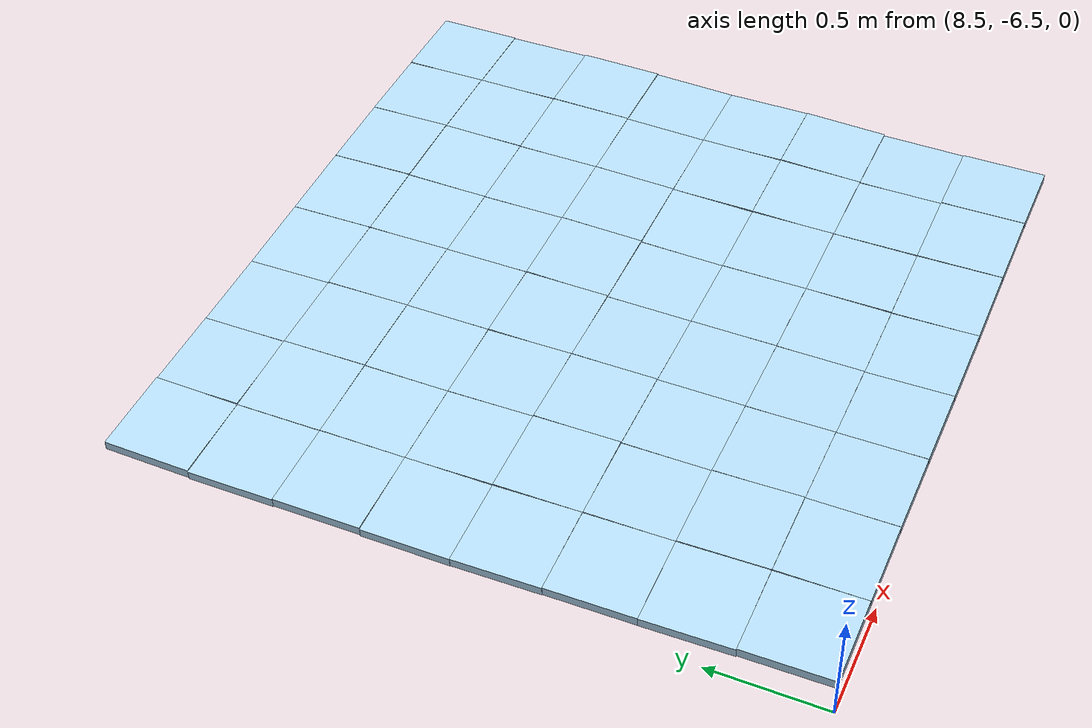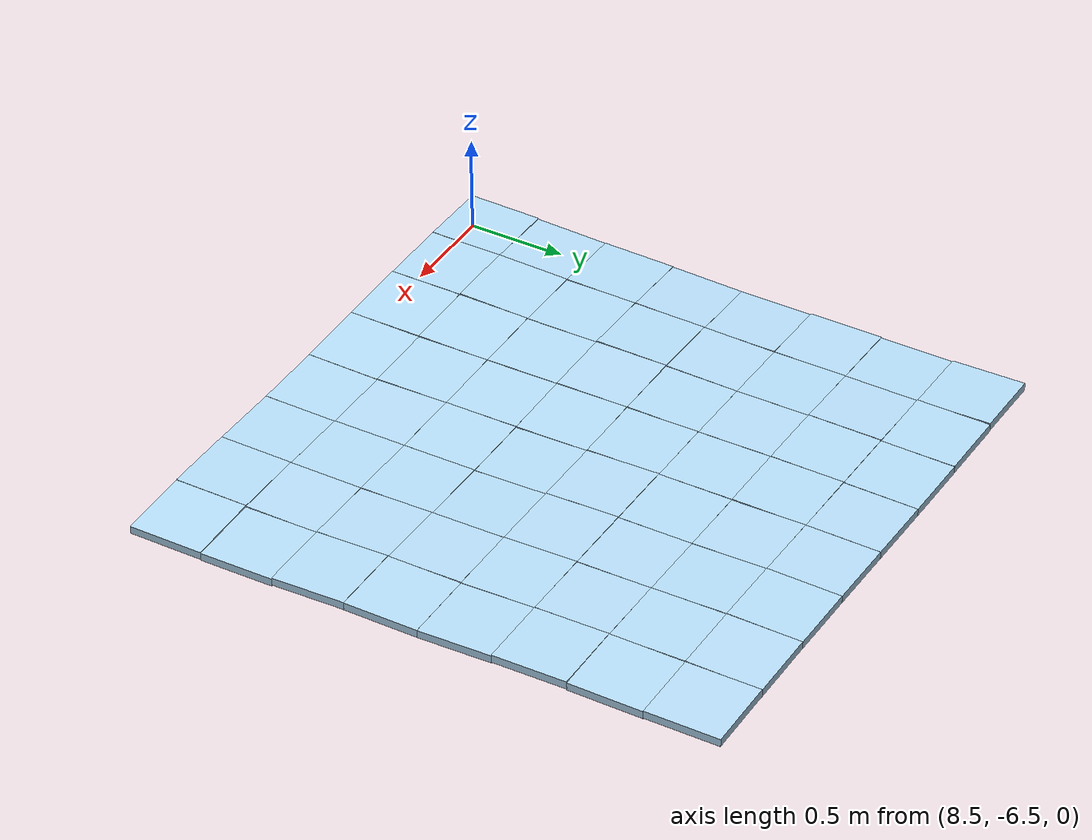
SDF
<sdf version="1.8">
 <world name="default">
  <model name="slip_patch_1">
   <static>true</static>
   <link name="t_0_0">
    <pose>8.6875 -6.3125 0.1632 -0.01806 -0.02700 0</pose>
    <collision name="collision">
     <geometry><box><size>0.3750 0.3750 0.04</size></box></geometry>
     <surface><friction><ode><mu>0.3</mu><mu2>0.3</mu2></ode></friction></surface>
    </collision>
    <visual name="visual">
     <geometry><box><size>0.3750 0.3750 0.04</size></box></geometry>
     <material>
      <ambient>0.62 0.76 0.85 1</ambient>
      <diffuse>0.70 0.85 0.95 1</diffuse>
      <specular>0.9 0.9 0.9 1</specular>
     </material>
    </visual>
   </link>
   <link name="t_0_1">
    <pose>8.6875 -5.9375 0.1518 -0.03470 -0.04861 0</pose>
    <collision name="collision">
     <geometry><box><size>0.3750 0.3750 0.04</size></box></geometry>
     <surface><friction><ode><mu>0.3</mu><mu2>0.3</mu2></ode></friction></surface>
    </collision>
    <visual name="visual">
     <geometry><box><size>0.3750 0.3750 0.04</size></box></geometry>
     <material>
      <ambient>0.62 0.76 0.85 1</ambient>
      <diffuse>0.70 0.85 0.95 1</diffuse>
      <specular>0.9 0.9 0.9 1</specular>
     </material>
    </visual>
   </link>
   <link name="t_0_2">
    <pose>8.6875 -5.5625 0.1428 -0.02063 -0.04782 0</pose>
    <collision name="collision">
     <geometry><box><size>0.3750 0.3750 0.04</size></box></geometry>
     <surface><friction><ode><mu>0.3</mu><mu2>0.3</mu2></ode></friction></surface>
    </collision>
    <visual name="visual">
     <geometry><box><size>0.3750 0.3750 0.04</size></box></geometry>
     <material>
      <ambient>0.62 0.76 0.85 1</ambient>
      <diffuse>0.70 0.85 0.95 1</diffuse>
      <specular>0.9 0.9 0.9 1</specular>
     </material>
    </visual>
   </link>
   <link name="t_0_3">
    <pose>8.6875 -5.1875 0.1330 -0.03111 -0.06247 0</pose>
    <collision name="collision">
     <geometry><box><size>0.3750 0.3750 0.04</size></box></geometry>
     <surface><friction><ode><mu>0.3</mu><mu2>0.3</mu2></ode></friction></surface>
    </collision>
    <visual name="visual">
     <geometry><box><size>0.3750 0.3750 0.04</size></box></geometry>
     <material>
      <ambient>0.62 0.76 0.85 1</ambient>
      <diffuse>0.70 0.85 0.95 1</diffuse>
      <specular>0.9 0.9 0.9 1</specular>
     </material>
    </visual>
   </link>
   <link name="t_0_4">
    <pose>8.6875 -4.8125 0.1257 -0.00396 -0.06405 0</pose>
    <collision name="collision">
     <geometry><box><size>0.3750 0.3750 0.04</size></box></geometry>
     <surface><friction><ode><mu>0.3</mu><mu2>0.3</mu2></ode></friction></surface>
    </collision>
    <visual name="visual">
     <geometry><box><size>0.3750 0.3750 0.04</size></box></geometry>
     <material>
      <ambient>0.62 0.76 0.85 1</ambient>
      <diffuse>0.70 0.85 0.95 1</diffuse>
      <specular>0.9 0.9 0.9 1</specular>
     </material>
    </visual>
   </link>
   <link name="t_0_5">
    <pose>8.6875 -4.4375 0.1264 -0.00694 -0.04168 0</pose>
    <collision name="collision">
     <geometry><box><size>0.3750 0.3750 0.04</size></box></geometry>
     <surface><friction><ode><mu>0.3</mu><mu2>0.3</mu2></ode></friction></surface>
    </collision>
    <visual name="visual">
     <geometry><box><size>0.3750 0.3750 0.04</size></box></geometry>
     <material>
      <ambient>0.62 0.76 0.85 1</ambient>
      <diffuse>0.70 0.85 0.95 1</diffuse>
      <specular>0.9 0.9 0.9 1</specular>
     </material>
    </visual>
   </link>
   <link name="t_0_6">
    <pose>8.6875 -4.0625 0.1208 -0.00694 -0.04960 0</pose>
    <collision name="collision">
     <geometry><box><size>0.3750 0.3750 0.04</size></box></geometry>
     <surface><friction><ode><mu>0.3</mu><mu2>0.3</mu2></ode></friction></surface>
    </collision>
    <visual name="visual">
     <geometry><box><size>0.3750 0.3750 0.04</size></box></geometry>
     <material>
      <ambient>0.62 0.76 0.85 1</ambient>
      <diffuse>0.70 0.85 0.95 1</diffuse>
      <specular>0.9 0.9 0.9 1</specular>
     </material>
    </visual>
   </link>
   <link name="t_0_7">
    <pose>8.6875 -3.6875 0.1260 0.01786 -0.03454 0</pose>
    <collision name="collision">
     <geometry><box><size>0.3750 0.3750 0.04</size></box></geometry>
     <surface><friction><ode><mu>0.3</mu><mu2>0.3</mu2></ode></friction></surface>
    </collision>
    <visual name="visual">
     <geometry><box><size>0.3750 0.3750 0.04</size></box></geometry>
     <material>
      <ambient>0.62 0.76 0.85 1</ambient>
      <diffuse>0.70 0.85 0.95 1</diffuse>
      <specular>0.9 0.9 0.9 1</specular>
     </material>
    </visual>
   </link>
   <link name="t_1_0">
    <pose>9.0625 -6.3125 0.1704 -0.00298 -0.00496 0</pose>
    <collision name="collision">
     <geometry><box><size>0.3750 0.3750 0.04</size></box></geometry>
     <surface><friction><ode><mu>0.3</mu><mu2>0.3</mu2></ode></friction></surface>
    </collision>
    <visual name="visual">
     <geometry><box><size>0.3750 0.3750 0.04</size></box></geometry>
     <material>
      <ambient>0.62 0.76 0.85 1</ambient>
      <diffuse>0.70 0.85 0.95 1</diffuse>
      <specular>0.9 0.9 0.9 1</specular>
     </material>
    </visual>
   </link>
   <link name="t_1_1">
    <pose>9.0625 -5.9375 0.1658 -0.02978 -0.01489 0</pose>
    <collision name="collision">
     <geometry><box><size>0.3750 0.3750 0.04</size></box></geometry>
     <surface><friction><ode><mu>0.3</mu><mu2>0.3</mu2></ode></friction></surface>
    </collision>
    <visual name="visual">
     <geometry><box><size>0.3750 0.3750 0.04</size></box></geometry>
     <material>
      <ambient>0.62 0.76 0.85 1</ambient>
      <diffuse>0.70 0.85 0.95 1</diffuse>
      <specular>0.9 0.9 0.9 1</specular>
     </material>
    </visual>
   </link>
   <link name="t_1_2">
    <pose>9.0625 -5.5625 0.1565 -0.00596 -0.02383 0</pose>
    <collision name="collision">
     <geometry><box><size>0.3750 0.3750 0.04</size></box></geometry>
     <surface><friction><ode><mu>0.3</mu><mu2>0.3</mu2></ode></friction></surface>
    </collision>
    <visual name="visual">
     <geometry><box><size>0.3750 0.3750 0.04</size></box></geometry>
     <material>
      <ambient>0.62 0.76 0.85 1</ambient>
      <diffuse>0.70 0.85 0.95 1</diffuse>
      <specular>0.9 0.9 0.9 1</specular>
     </material>
    </visual>
   </link>
   <link name="t_1_3">
    <pose>9.0625 -5.1875 0.1552 -0.01289 -0.04762 0</pose>
    <collision name="collision">
     <geometry><box><size>0.3750 0.3750 0.04</size></box></geometry>
     <surface><friction><ode><mu>0.3</mu><mu2>0.3</mu2></ode></friction></surface>
    </collision>
    <visual name="visual">
     <geometry><box><size>0.3750 0.3750 0.04</size></box></geometry>
     <material>
      <ambient>0.62 0.76 0.85 1</ambient>
      <diffuse>0.70 0.85 0.95 1</diffuse>
      <specular>0.9 0.9 0.9 1</specular>
     </material>
    </visual>
   </link>
   <link name="t_1_4">
    <pose>9.0625 -4.8125 0.1465 -0.02281 -0.04366 0</pose>
    <collision name="collision">
     <geometry><box><size>0.3750 0.3750 0.04</size></box></geometry>
     <surface><friction><ode><mu>0.3</mu><mu2>0.3</mu2></ode></friction></surface>
    </collision>
    <visual name="visual">
     <geometry><box><size>0.3750 0.3750 0.04</size></box></geometry>
     <material>
      <ambient>0.62 0.76 0.85 1</ambient>
      <diffuse>0.70 0.85 0.95 1</diffuse>
      <specular>0.9 0.9 0.9 1</specular>
     </material>
    </visual>
   </link>
   <link name="t_1_5">
    <pose>9.0625 -4.4375 0.1425 -0.00198 -0.04267 0</pose>
    <collision name="collision">
     <geometry><box><size>0.3750 0.3750 0.04</size></box></geometry>
     <surface><friction><ode><mu>0.3</mu><mu2>0.3</mu2></ode></friction></surface>
    </collision>
    <visual name="visual">
     <geometry><box><size>0.3750 0.3750 0.04</size></box></geometry>
     <material>
      <ambient>0.62 0.76 0.85 1</ambient>
      <diffuse>0.70 0.85 0.95 1</diffuse>
      <specular>0.9 0.9 0.9 1</specular>
     </material>
    </visual>
   </link>
   <link name="t_1_6">
    <pose>9.0625 -4.0625 0.1409 -0.00991 -0.05456 0</pose>
    <collision name="collision">
     <geometry><box><size>0.3750 0.3750 0.04</size></box></geometry>
     <surface><friction><ode><mu>0.3</mu><mu2>0.3</mu2></ode></friction></surface>
    </collision>
    <visual name="visual">
     <geometry><box><size>0.3750 0.3750 0.04</size></box></geometry>
     <material>
      <ambient>0.62 0.76 0.85 1</ambient>
      <diffuse>0.70 0.85 0.95 1</diffuse>
      <specular>0.9 0.9 0.9 1</specular>
     </material>
    </visual>
   </link>
   <link name="t_1_7">
    <pose>9.0625 -3.6875 0.1372 -0.00992 -0.02779 0</pose>
    <collision name="collision">
     <geometry><box><size>0.3750 0.3750 0.04</size></box></geometry>
     <surface><friction><ode><mu>0.3</mu><mu2>0.3</mu2></ode></friction></surface>
    </collision>
    <visual name="visual">
     <geometry><box><size>0.3750 0.3750 0.04</size></box></geometry>
     <material>
      <ambient>0.62 0.76 0.85 1</ambient>
      <diffuse>0.70 0.85 0.95 1</diffuse>
      <specular>0.9 0.9 0.9 1</specular>
     </material>
    </visual>
   </link>
   <link name="t_2_0">
    <pose>9.4375 -6.3125 0.1679 -0.00695 0.01608 0</pose>
    <collision name="collision">
     <geometry><box><size>0.3750 0.3750 0.04</size></box></geometry>
     <surface><friction><ode><mu>0.3</mu><mu2>0.3</mu2></ode></friction></surface>
    </collision>
    <visual name="visual">
     <geometry><box><size>0.3750 0.3750 0.04</size></box></geometry>
     <material>
      <ambient>0.62 0.76 0.85 1</ambient>
      <diffuse>0.70 0.85 0.95 1</diffuse>
      <specular>0.9 0.9 0.9 1</specular>
     </material>
    </visual>
   </link>
   <link name="t_2_1">
    <pose>9.4375 -5.9375 0.1645 -0.01291 0.01390 0</pose>
    <collision name="collision">
     <geometry><box><size>0.3750 0.3750 0.04</size></box></geometry>
     <surface><friction><ode><mu>0.3</mu><mu2>0.3</mu2></ode></friction></surface>
    </collision>
    <visual name="visual">
     <geometry><box><size>0.3750 0.3750 0.04</size></box></geometry>
     <material>
      <ambient>0.62 0.76 0.85 1</ambient>
      <diffuse>0.70 0.85 0.95 1</diffuse>
      <specular>0.9 0.9 0.9 1</specular>
     </material>
    </visual>
   </link>
   <link name="t_2_2">
    <pose>9.4375 -5.5625 0.1614 0.00218 -0.00298 0</pose>
    <collision name="collision">
     <geometry><box><size>0.3750 0.3750 0.04</size></box></geometry>
     <surface><friction><ode><mu>0.3</mu><mu2>0.3</mu2></ode></friction></surface>
    </collision>
    <visual name="visual">
     <geometry><box><size>0.3750 0.3750 0.04</size></box></geometry>
     <material>
      <ambient>0.62 0.76 0.85 1</ambient>
      <diffuse>0.70 0.85 0.95 1</diffuse>
      <specular>0.9 0.9 0.9 1</specular>
     </material>
    </visual>
   </link>
   <link name="t_2_3">
    <pose>9.4375 -5.1875 0.1640 -0.00079 -0.00596 0</pose>
    <collision name="collision">
     <geometry><box><size>0.3750 0.3750 0.04</size></box></geometry>
     <surface><friction><ode><mu>0.3</mu><mu2>0.3</mu2></ode></friction></surface>
    </collision>
    <visual name="visual">
     <geometry><box><size>0.3750 0.3750 0.04</size></box></geometry>
     <material>
      <ambient>0.62 0.76 0.85 1</ambient>
      <diffuse>0.70 0.85 0.95 1</diffuse>
      <specular>0.9 0.9 0.9 1</specular>
     </material>
    </visual>
   </link>
   <link name="t_2_4">
    <pose>9.4375 -4.8125 0.1587 -0.01588 -0.02422 0</pose>
    <collision name="collision">
     <geometry><box><size>0.3750 0.3750 0.04</size></box></geometry>
     <surface><friction><ode><mu>0.3</mu><mu2>0.3</mu2></ode></friction></surface>
    </collision>
    <visual name="visual">
     <geometry><box><size>0.3750 0.3750 0.04</size></box></geometry>
     <material>
      <ambient>0.62 0.76 0.85 1</ambient>
      <diffuse>0.70 0.85 0.95 1</diffuse>
      <specular>0.9 0.9 0.9 1</specular>
     </material>
    </visual>
   </link>
   <link name="t_2_5">
    <pose>9.4375 -4.4375 0.1571 0.00377 -0.03454 0</pose>
    <collision name="collision">
     <geometry><box><size>0.3750 0.3750 0.04</size></box></geometry>
     <surface><friction><ode><mu>0.3</mu><mu2>0.3</mu2></ode></friction></surface>
    </collision>
    <visual name="visual">
     <geometry><box><size>0.3750 0.3750 0.04</size></box></geometry>
     <material>
      <ambient>0.62 0.76 0.85 1</ambient>
      <diffuse>0.70 0.85 0.95 1</diffuse>
      <specular>0.9 0.9 0.9 1</specular>
     </material>
    </visual>
   </link>
   <link name="t_2_6">
    <pose>9.4375 -4.0625 0.1568 -0.01488 -0.03275 0</pose>
    <collision name="collision">
     <geometry><box><size>0.3750 0.3750 0.04</size></box></geometry>
     <surface><friction><ode><mu>0.3</mu><mu2>0.3</mu2></ode></friction></surface>
    </collision>
    <visual name="visual">
     <geometry><box><size>0.3750 0.3750 0.04</size></box></geometry>
     <material>
      <ambient>0.62 0.76 0.85 1</ambient>
      <diffuse>0.70 0.85 0.95 1</diffuse>
      <specular>0.9 0.9 0.9 1</specular>
     </material>
    </visual>
   </link>
   <link name="t_2_7">
    <pose>9.4375 -3.6875 0.1484 -0.01846 -0.03355 0</pose>
    <collision name="collision">
     <geometry><box><size>0.3750 0.3750 0.04</size></box></geometry>
     <surface><friction><ode><mu>0.3</mu><mu2>0.3</mu2></ode></friction></surface>
    </collision>
    <visual name="visual">
     <geometry><box><size>0.3750 0.3750 0.04</size></box></geometry>
     <material>
      <ambient>0.62 0.76 0.85 1</ambient>
      <diffuse>0.70 0.85 0.95 1</diffuse>
      <specular>0.9 0.9 0.9 1</specular>
     </material>
    </visual>
   </link>
   <link name="t_3_0">
    <pose>9.8125 -6.3125 0.1599 -0.02005 0.01886 0</pose>
    <collision name="collision">
     <geometry><box><size>0.3750 0.3750 0.04</size></box></geometry>
     <surface><friction><ode><mu>0.3</mu><mu2>0.3</mu2></ode></friction></surface>
    </collision>
    <visual name="visual">
     <geometry><box><size>0.3750 0.3750 0.04</size></box></geometry>
     <material>
      <ambient>0.62 0.76 0.85 1</ambient>
      <diffuse>0.70 0.85 0.95 1</diffuse>
      <specular>0.9 0.9 0.9 1</specular>
     </material>
    </visual>
   </link>
   <link name="t_3_1">
    <pose>9.8125 -5.9375 0.1583 0.00397 0.01092 0</pose>
    <collision name="collision">
     <geometry><box><size>0.3750 0.3750 0.04</size></box></geometry>
     <surface><friction><ode><mu>0.3</mu><mu2>0.3</mu2></ode></friction></surface>
    </collision>
    <visual name="visual">
     <geometry><box><size>0.3750 0.3750 0.04</size></box></geometry>
     <material>
      <ambient>0.62 0.76 0.85 1</ambient>
      <diffuse>0.70 0.85 0.95 1</diffuse>
      <specular>0.9 0.9 0.9 1</specular>
     </material>
    </visual>
   </link>
   <link name="t_3_2">
    <pose>9.8125 -5.5625 0.1597 0.00536 0.00298 0</pose>
    <collision name="collision">
     <geometry><box><size>0.3750 0.3750 0.04</size></box></geometry>
     <surface><friction><ode><mu>0.3</mu><mu2>0.3</mu2></ode></friction></surface>
    </collision>
    <visual name="visual">
     <geometry><box><size>0.3750 0.3750 0.04</size></box></geometry>
     <material>
      <ambient>0.62 0.76 0.85 1</ambient>
      <diffuse>0.70 0.85 0.95 1</diffuse>
      <specular>0.9 0.9 0.9 1</specular>
     </material>
    </visual>
   </link>
   <link name="t_3_3">
    <pose>9.8125 -5.1875 0.1627 0.00913 0.00913 0</pose>
    <collision name="collision">
     <geometry><box><size>0.3750 0.3750 0.04</size></box></geometry>
     <surface><friction><ode><mu>0.3</mu><mu2>0.3</mu2></ode></friction></surface>
    </collision>
    <visual name="visual">
     <geometry><box><size>0.3750 0.3750 0.04</size></box></geometry>
     <material>
      <ambient>0.62 0.76 0.85 1</ambient>
      <diffuse>0.70 0.85 0.95 1</diffuse>
      <specular>0.9 0.9 0.9 1</specular>
     </material>
    </visual>
   </link>
   <link name="t_3_4">
    <pose>9.8125 -4.8125 0.1667 0.00715 -0.01767 0</pose>
    <collision name="collision">
     <geometry><box><size>0.3750 0.3750 0.04</size></box></geometry>
     <surface><friction><ode><mu>0.3</mu><mu2>0.3</mu2></ode></friction></surface>
    </collision>
    <visual name="visual">
     <geometry><box><size>0.3750 0.3750 0.04</size></box></geometry>
     <material>
      <ambient>0.62 0.76 0.85 1</ambient>
      <diffuse>0.70 0.85 0.95 1</diffuse>
      <specular>0.9 0.9 0.9 1</specular>
     </material>
    </visual>
   </link>
   <link name="t_3_5">
    <pose>9.8125 -4.4375 0.1679 0.00218 -0.02521 0</pose>
    <collision name="collision">
     <geometry><box><size>0.3750 0.3750 0.04</size></box></geometry>
     <surface><friction><ode><mu>0.3</mu><mu2>0.3</mu2></ode></friction></surface>
    </collision>
    <visual name="visual">
     <geometry><box><size>0.3750 0.3750 0.04</size></box></geometry>
     <material>
      <ambient>0.62 0.76 0.85 1</ambient>
      <diffuse>0.70 0.85 0.95 1</diffuse>
      <specular>0.9 0.9 0.9 1</specular>
     </material>
    </visual>
   </link>
   <link name="t_3_6">
    <pose>9.8125 -4.0625 0.1679 -0.00695 -0.02581 0</pose>
    <collision name="collision">
     <geometry><box><size>0.3750 0.3750 0.04</size></box></geometry>
     <surface><friction><ode><mu>0.3</mu><mu2>0.3</mu2></ode></friction></surface>
    </collision>
    <visual name="visual">
     <geometry><box><size>0.3750 0.3750 0.04</size></box></geometry>
     <material>
      <ambient>0.62 0.76 0.85 1</ambient>
      <diffuse>0.70 0.85 0.95 1</diffuse>
      <specular>0.9 0.9 0.9 1</specular>
     </material>
    </visual>
   </link>
   <link name="t_3_7">
    <pose>9.8125 -3.6875 0.1622 -0.01508 -0.04307 0</pose>
    <collision name="collision">
     <geometry><box><size>0.3750 0.3750 0.04</size></box></geometry>
     <surface><friction><ode><mu>0.3</mu><mu2>0.3</mu2></ode></friction></surface>
    </collision>
    <visual name="visual">
     <geometry><box><size>0.3750 0.3750 0.04</size></box></geometry>
     <material>
      <ambient>0.62 0.76 0.85 1</ambient>
      <diffuse>0.70 0.85 0.95 1</diffuse>
      <specular>0.9 0.9 0.9 1</specular>
     </material>
    </visual>
   </link>
   <link name="t_4_0">
    <pose>10.1875 -6.3125 0.1571 -0.02283 -0.00755 0</pose>
    <collision name="collision">
     <geometry><box><size>0.3750 0.3750 0.04</size></box></geometry>
     <surface><friction><ode><mu>0.3</mu><mu2>0.3</mu2></ode></friction></surface>
    </collision>
    <visual name="visual">
     <geometry><box><size>0.3750 0.3750 0.04</size></box></geometry>
     <material>
      <ambient>0.62 0.76 0.85 1</ambient>
      <diffuse>0.70 0.85 0.95 1</diffuse>
      <specular>0.9 0.9 0.9 1</specular>
     </material>
    </visual>
   </link>
   <link name="t_4_1">
    <pose>10.1875 -5.9375 0.1568 0.01489 -0.00794 0</pose>
    <collision name="collision">
     <geometry><box><size>0.3750 0.3750 0.04</size></box></geometry>
     <surface><friction><ode><mu>0.3</mu><mu2>0.3</mu2></ode></friction></surface>
    </collision>
    <visual name="visual">
     <geometry><box><size>0.3750 0.3750 0.04</size></box></geometry>
     <material>
      <ambient>0.62 0.76 0.85 1</ambient>
      <diffuse>0.70 0.85 0.95 1</diffuse>
      <specular>0.9 0.9 0.9 1</specular>
     </material>
    </visual>
   </link>
   <link name="t_4_2">
    <pose>10.1875 -5.5625 0.1597 -0.00060 -0.00496 0</pose>
    <collision name="collision">
     <geometry><box><size>0.3750 0.3750 0.04</size></box></geometry>
     <surface><friction><ode><mu>0.3</mu><mu2>0.3</mu2></ode></friction></surface>
    </collision>
    <visual name="visual">
     <geometry><box><size>0.3750 0.3750 0.04</size></box></geometry>
     <material>
      <ambient>0.62 0.76 0.85 1</ambient>
      <diffuse>0.70 0.85 0.95 1</diffuse>
      <specular>0.9 0.9 0.9 1</specular>
     </material>
    </visual>
   </link>
   <link name="t_4_3">
    <pose>10.1875 -5.1875 0.1614 0.02204 -0.01092 0</pose>
    <collision name="collision">
     <geometry><box><size>0.3750 0.3750 0.04</size></box></geometry>
     <surface><friction><ode><mu>0.3</mu><mu2>0.3</mu2></ode></friction></surface>
    </collision>
    <visual name="visual">
     <geometry><box><size>0.3750 0.3750 0.04</size></box></geometry>
     <material>
      <ambient>0.62 0.76 0.85 1</ambient>
      <diffuse>0.70 0.85 0.95 1</diffuse>
      <specular>0.9 0.9 0.9 1</specular>
     </material>
    </visual>
   </link>
   <link name="t_4_4">
    <pose>10.1875 -4.8125 0.1748 0.02580 -0.02402 0</pose>
    <collision name="collision">
     <geometry><box><size>0.3750 0.3750 0.04</size></box></geometry>
     <surface><friction><ode><mu>0.3</mu><mu2>0.3</mu2></ode></friction></surface>
    </collision>
    <visual name="visual">
     <geometry><box><size>0.3750 0.3750 0.04</size></box></geometry>
     <material>
      <ambient>0.62 0.76 0.85 1</ambient>
      <diffuse>0.70 0.85 0.95 1</diffuse>
      <specular>0.9 0.9 0.9 1</specular>
     </material>
    </visual>
   </link>
   <link name="t_4_5">
    <pose>10.1875 -4.4375 0.1765 -0.00397 -0.02482 0</pose>
    <collision name="collision">
     <geometry><box><size>0.3750 0.3750 0.04</size></box></geometry>
     <surface><friction><ode><mu>0.3</mu><mu2>0.3</mu2></ode></friction></surface>
    </collision>
    <visual name="visual">
     <geometry><box><size>0.3750 0.3750 0.04</size></box></geometry>
     <material>
      <ambient>0.62 0.76 0.85 1</ambient>
      <diffuse>0.70 0.85 0.95 1</diffuse>
      <specular>0.9 0.9 0.9 1</specular>
     </material>
    </visual>
   </link>
   <link name="t_4_6">
    <pose>10.1875 -4.0625 0.1779 0.01191 -0.03474 0</pose>
    <collision name="collision">
     <geometry><box><size>0.3750 0.3750 0.04</size></box></geometry>
     <surface><friction><ode><mu>0.3</mu><mu2>0.3</mu2></ode></friction></surface>
    </collision>
    <visual name="visual">
     <geometry><box><size>0.3750 0.3750 0.04</size></box></geometry>
     <material>
      <ambient>0.62 0.76 0.85 1</ambient>
      <diffuse>0.70 0.85 0.95 1</diffuse>
      <specular>0.9 0.9 0.9 1</specular>
     </material>
    </visual>
   </link>
   <link name="t_4_7">
    <pose>10.1875 -3.6875 0.1784 -0.01528 -0.04267 0</pose>
    <collision name="collision">
     <geometry><box><size>0.3750 0.3750 0.04</size></box></geometry>
     <surface><friction><ode><mu>0.3</mu><mu2>0.3</mu2></ode></friction></surface>
    </collision>
    <visual name="visual">
     <geometry><box><size>0.3750 0.3750 0.04</size></box></geometry>
     <material>
      <ambient>0.62 0.76 0.85 1</ambient>
      <diffuse>0.70 0.85 0.95 1</diffuse>
      <specular>0.9 0.9 0.9 1</specular>
     </material>
    </visual>
   </link>
   <link name="t_5_0">
    <pose>10.5625 -6.3125 0.1657 -0.01350 -0.03196 0</pose>
    <collision name="collision">
     <geometry><box><size>0.3750 0.3750 0.04</size></box></geometry>
     <surface><friction><ode><mu>0.3</mu><mu2>0.3</mu2></ode></friction></surface>
    </collision>
    <visual name="visual">
     <geometry><box><size>0.3750 0.3750 0.04</size></box></geometry>
     <material>
      <ambient>0.62 0.76 0.85 1</ambient>
      <diffuse>0.70 0.85 0.95 1</diffuse>
      <specular>0.9 0.9 0.9 1</specular>
     </material>
    </visual>
   </link>
   <link name="t_5_1">
    <pose>10.5625 -5.9375 0.1645 0.00199 -0.02184 0</pose>
    <collision name="collision">
     <geometry><box><size>0.3750 0.3750 0.04</size></box></geometry>
     <surface><friction><ode><mu>0.3</mu><mu2>0.3</mu2></ode></friction></surface>
    </collision>
    <visual name="visual">
     <geometry><box><size>0.3750 0.3750 0.04</size></box></geometry>
     <material>
      <ambient>0.62 0.76 0.85 1</ambient>
      <diffuse>0.70 0.85 0.95 1</diffuse>
      <specular>0.9 0.9 0.9 1</specular>
     </material>
    </visual>
   </link>
   <link name="t_5_2">
    <pose>10.5625 -5.5625 0.1658 0.00298 -0.02601 0</pose>
    <collision name="collision">
     <geometry><box><size>0.3750 0.3750 0.04</size></box></geometry>
     <surface><friction><ode><mu>0.3</mu><mu2>0.3</mu2></ode></friction></surface>
    </collision>
    <visual name="visual">
     <geometry><box><size>0.3750 0.3750 0.04</size></box></geometry>
     <material>
      <ambient>0.62 0.76 0.85 1</ambient>
      <diffuse>0.70 0.85 0.95 1</diffuse>
      <specular>0.9 0.9 0.9 1</specular>
     </material>
    </visual>
   </link>
   <link name="t_5_3">
    <pose>10.5625 -5.1875 0.1695 0.02679 -0.03077 0</pose>
    <collision name="collision">
     <geometry><box><size>0.3750 0.3750 0.04</size></box></geometry>
     <surface><friction><ode><mu>0.3</mu><mu2>0.3</mu2></ode></friction></surface>
    </collision>
    <visual name="visual">
     <geometry><box><size>0.3750 0.3750 0.04</size></box></geometry>
     <material>
      <ambient>0.62 0.76 0.85 1</ambient>
      <diffuse>0.70 0.85 0.95 1</diffuse>
      <specular>0.9 0.9 0.9 1</specular>
     </material>
    </visual>
   </link>
   <link name="t_5_4">
    <pose>10.5625 -4.8125 0.1833 0.02838 -0.02184 0</pose>
    <collision name="collision">
     <geometry><box><size>0.3750 0.3750 0.04</size></box></geometry>
     <surface><friction><ode><mu>0.3</mu><mu2>0.3</mu2></ode></friction></surface>
    </collision>
    <visual name="visual">
     <geometry><box><size>0.3750 0.3750 0.04</size></box></geometry>
     <material>
      <ambient>0.62 0.76 0.85 1</ambient>
      <diffuse>0.70 0.85 0.95 1</diffuse>
      <specular>0.9 0.9 0.9 1</specular>
     </material>
    </visual>
   </link>
   <link name="t_5_5">
    <pose>10.5625 -4.4375 0.1868 0.00218 -0.03037 0</pose>
    <collision name="collision">
     <geometry><box><size>0.3750 0.3750 0.04</size></box></geometry>
     <surface><friction><ode><mu>0.3</mu><mu2>0.3</mu2></ode></friction></surface>
    </collision>
    <visual name="visual">
     <geometry><box><size>0.3750 0.3750 0.04</size></box></geometry>
     <material>
      <ambient>0.62 0.76 0.85 1</ambient>
      <diffuse>0.70 0.85 0.95 1</diffuse>
      <specular>0.9 0.9 0.9 1</specular>
     </material>
    </visual>
   </link>
   <link name="t_5_6">
    <pose>10.5625 -4.0625 0.1912 0.01984 -0.03474 0</pose>
    <collision name="collision">
     <geometry><box><size>0.3750 0.3750 0.04</size></box></geometry>
     <surface><friction><ode><mu>0.3</mu><mu2>0.3</mu2></ode></friction></surface>
    </collision>
    <visual name="visual">
     <geometry><box><size>0.3750 0.3750 0.04</size></box></geometry>
     <material>
      <ambient>0.62 0.76 0.85 1</ambient>
      <diffuse>0.70 0.85 0.95 1</diffuse>
      <specular>0.9 0.9 0.9 1</specular>
     </material>
    </visual>
   </link>
   <link name="t_5_7">
    <pose>10.5625 -3.6875 0.1934 -0.01865 -0.03256 0</pose>
    <collision name="collision">
     <geometry><box><size>0.3750 0.3750 0.04</size></box></geometry>
     <surface><friction><ode><mu>0.3</mu><mu2>0.3</mu2></ode></friction></surface>
    </collision>
    <visual name="visual">
     <geometry><box><size>0.3750 0.3750 0.04</size></box></geometry>
     <material>
      <ambient>0.62 0.76 0.85 1</ambient>
      <diffuse>0.70 0.85 0.95 1</diffuse>
      <specular>0.9 0.9 0.9 1</specular>
     </material>
    </visual>
   </link>
   <link name="t_6_0">
    <pose>10.9375 -6.3125 0.1772 -0.00893 -0.01986 0</pose>
    <collision name="collision">
     <geometry><box><size>0.3750 0.3750 0.04</size></box></geometry>
     <surface><friction><ode><mu>0.3</mu><mu2>0.3</mu2></ode></friction></surface>
    </collision>
    <visual name="visual">
     <geometry><box><size>0.3750 0.3750 0.04</size></box></geometry>
     <material>
      <ambient>0.62 0.76 0.85 1</ambient>
      <diffuse>0.70 0.85 0.95 1</diffuse>
      <specular>0.9 0.9 0.9 1</specular>
     </material>
    </visual>
   </link>
   <link name="t_6_1">
    <pose>10.9375 -5.9375 0.1720 -0.00496 -0.00993 0</pose>
    <collision name="collision">
     <geometry><box><size>0.3750 0.3750 0.04</size></box></geometry>
     <surface><friction><ode><mu>0.3</mu><mu2>0.3</mu2></ode></friction></surface>
    </collision>
    <visual name="visual">
     <geometry><box><size>0.3750 0.3750 0.04</size></box></geometry>
     <material>
      <ambient>0.62 0.76 0.85 1</ambient>
      <diffuse>0.70 0.85 0.95 1</diffuse>
      <specular>0.9 0.9 0.9 1</specular>
     </material>
    </visual>
   </link>
   <link name="t_6_2">
    <pose>10.9375 -5.5625 0.1769 0.02282 -0.02879 0</pose>
    <collision name="collision">
     <geometry><box><size>0.3750 0.3750 0.04</size></box></geometry>
     <surface><friction><ode><mu>0.3</mu><mu2>0.3</mu2></ode></friction></surface>
    </collision>
    <visual name="visual">
     <geometry><box><size>0.3750 0.3750 0.04</size></box></geometry>
     <material>
      <ambient>0.62 0.76 0.85 1</ambient>
      <diffuse>0.70 0.85 0.95 1</diffuse>
      <specular>0.9 0.9 0.9 1</specular>
     </material>
    </visual>
   </link>
   <link name="t_6_3">
    <pose>10.9375 -5.1875 0.1825 0.00993 -0.02680 0</pose>
    <collision name="collision">
     <geometry><box><size>0.3750 0.3750 0.04</size></box></geometry>
     <surface><friction><ode><mu>0.3</mu><mu2>0.3</mu2></ode></friction></surface>
    </collision>
    <visual name="visual">
     <geometry><box><size>0.3750 0.3750 0.04</size></box></geometry>
     <material>
      <ambient>0.62 0.76 0.85 1</ambient>
      <diffuse>0.70 0.85 0.95 1</diffuse>
      <specular>0.9 0.9 0.9 1</specular>
     </material>
    </visual>
   </link>
   <link name="t_6_4">
    <pose>10.9375 -4.8125 0.1900 0.02878 -0.01489 0</pose>
    <collision name="collision">
     <geometry><box><size>0.3750 0.3750 0.04</size></box></geometry>
     <surface><friction><ode><mu>0.3</mu><mu2>0.3</mu2></ode></friction></surface>
    </collision>
    <visual name="visual">
     <geometry><box><size>0.3750 0.3750 0.04</size></box></geometry>
     <material>
      <ambient>0.62 0.76 0.85 1</ambient>
      <diffuse>0.70 0.85 0.95 1</diffuse>
      <specular>0.9 0.9 0.9 1</specular>
     </material>
    </visual>
   </link>
   <link name="t_6_5">
    <pose>10.9375 -4.4375 0.1977 0.01191 -0.02978 0</pose>
    <collision name="collision">
     <geometry><box><size>0.3750 0.3750 0.04</size></box></geometry>
     <surface><friction><ode><mu>0.3</mu><mu2>0.3</mu2></ode></friction></surface>
    </collision>
    <visual name="visual">
     <geometry><box><size>0.3750 0.3750 0.04</size></box></geometry>
     <material>
      <ambient>0.62 0.76 0.85 1</ambient>
      <diffuse>0.70 0.85 0.95 1</diffuse>
      <specular>0.9 0.9 0.9 1</specular>
     </material>
    </visual>
   </link>
   <link name="t_6_6">
    <pose>10.9375 -4.0625 0.2014 0.00993 -0.01986 0</pose>
    <collision name="collision">
     <geometry><box><size>0.3750 0.3750 0.04</size></box></geometry>
     <surface><friction><ode><mu>0.3</mu><mu2>0.3</mu2></ode></friction></surface>
    </collision>
    <visual name="visual">
     <geometry><box><size>0.3750 0.3750 0.04</size></box></geometry>
     <material>
      <ambient>0.62 0.76 0.85 1</ambient>
      <diffuse>0.70 0.85 0.95 1</diffuse>
      <specular>0.9 0.9 0.9 1</specular>
     </material>
    </visual>
   </link>
   <link name="t_6_7">
    <pose>10.9375 -3.6875 0.2024 -0.01092 -0.01589 0</pose>
    <collision name="collision">
     <geometry><box><size>0.3750 0.3750 0.04</size></box></geometry>
     <surface><friction><ode><mu>0.3</mu><mu2>0.3</mu2></ode></friction></surface>
    </collision>
    <visual name="visual">
     <geometry><box><size>0.3750 0.3750 0.04</size></box></geometry>
     <material>
      <ambient>0.62 0.76 0.85 1</ambient>
      <diffuse>0.70 0.85 0.95 1</diffuse>
      <specular>0.9 0.9 0.9 1</specular>
     </material>
    </visual>
   </link>
   <link name="t_7_0">
    <pose>11.3125 -6.3125 0.1766 -0.00496 0.02283 0</pose>
    <collision name="collision">
     <geometry><box><size>0.3750 0.3750 0.04</size></box></geometry>
     <surface><friction><ode><mu>0.3</mu><mu2>0.3</mu2></ode></friction></surface>
    </collision>
    <visual name="visual">
     <geometry><box><size>0.3750 0.3750 0.04</size></box></geometry>
     <material>
      <ambient>0.62 0.76 0.85 1</ambient>
      <diffuse>0.70 0.85 0.95 1</diffuse>
      <specular>0.9 0.9 0.9 1</specular>
     </material>
    </visual>
   </link>
   <link name="t_7_1">
    <pose>11.3125 -5.9375 0.1713 0.00894 0.00894 0</pose>
    <collision name="collision">
     <geometry><box><size>0.3750 0.3750 0.04</size></box></geometry>
     <surface><friction><ode><mu>0.3</mu><mu2>0.3</mu2></ode></friction></surface>
    </collision>
    <visual name="visual">
     <geometry><box><size>0.3750 0.3750 0.04</size></box></geometry>
     <material>
      <ambient>0.62 0.76 0.85 1</ambient>
      <diffuse>0.70 0.85 0.95 1</diffuse>
      <specular>0.9 0.9 0.9 1</specular>
     </material>
    </visual>
   </link>
   <link name="t_7_2">
    <pose>11.3125 -5.5625 0.1838 0.03375 -0.00218 0</pose>
    <collision name="collision">
     <geometry><box><size>0.3750 0.3750 0.04</size></box></geometry>
     <surface><friction><ode><mu>0.3</mu><mu2>0.3</mu2></ode></friction></surface>
    </collision>
    <visual name="visual">
     <geometry><box><size>0.3750 0.3750 0.04</size></box></geometry>
     <material>
      <ambient>0.62 0.76 0.85 1</ambient>
      <diffuse>0.70 0.85 0.95 1</diffuse>
      <specular>0.9 0.9 0.9 1</specular>
     </material>
    </visual>
   </link>
   <link name="t_7_3">
    <pose>11.3125 -5.1875 0.1878 -0.00397 -0.00159 0</pose>
    <collision name="collision">
     <geometry><box><size>0.3750 0.3750 0.04</size></box></geometry>
     <surface><friction><ode><mu>0.3</mu><mu2>0.3</mu2></ode></friction></surface>
    </collision>
    <visual name="visual">
     <geometry><box><size>0.3750 0.3750 0.04</size></box></geometry>
     <material>
      <ambient>0.62 0.76 0.85 1</ambient>
      <diffuse>0.70 0.85 0.95 1</diffuse>
      <specular>0.9 0.9 0.9 1</specular>
     </material>
    </visual>
   </link>
   <link name="t_7_4">
    <pose>11.3125 -4.8125 0.1924 0.03335 -0.00397 0</pose>
    <collision name="collision">
     <geometry><box><size>0.3750 0.3750 0.04</size></box></geometry>
     <surface><friction><ode><mu>0.3</mu><mu2>0.3</mu2></ode></friction></surface>
    </collision>
    <visual name="visual">
     <geometry><box><size>0.3750 0.3750 0.04</size></box></geometry>
     <material>
      <ambient>0.62 0.76 0.85 1</ambient>
      <diffuse>0.70 0.85 0.95 1</diffuse>
      <specular>0.9 0.9 0.9 1</specular>
     </material>
    </visual>
   </link>
   <link name="t_7_5">
    <pose>11.3125 -4.4375 0.2055 0.01668 -0.00854 0</pose>
    <collision name="collision">
     <geometry><box><size>0.3750 0.3750 0.04</size></box></geometry>
     <surface><friction><ode><mu>0.3</mu><mu2>0.3</mu2></ode></friction></surface>
    </collision>
    <visual name="visual">
     <geometry><box><size>0.3750 0.3750 0.04</size></box></geometry>
     <material>
      <ambient>0.62 0.76 0.85 1</ambient>
      <diffuse>0.70 0.85 0.95 1</diffuse>
      <specular>0.9 0.9 0.9 1</specular>
     </material>
    </visual>
   </link>
   <link name="t_7_6">
    <pose>11.3125 -4.0625 0.2045 -0.00496 0.00199 0</pose>
    <collision name="collision">
     <geometry><box><size>0.3750 0.3750 0.04</size></box></geometry>
     <surface><friction><ode><mu>0.3</mu><mu2>0.3</mu2></ode></friction></surface>
    </collision>
    <visual name="visual">
     <geometry><box><size>0.3750 0.3750 0.04</size></box></geometry>
     <material>
      <ambient>0.62 0.76 0.85 1</ambient>
      <diffuse>0.70 0.85 0.95 1</diffuse>
      <specular>0.9 0.9 0.9 1</specular>
     </material>
    </visual>
   </link>
   <link name="t_7_7">
    <pose>11.3125 -3.6875 0.2063 0.00298 -0.00496 0</pose>
    <collision name="collision">
     <geometry><box><size>0.3750 0.3750 0.04</size></box></geometry>
     <surface><friction><ode><mu>0.3</mu><mu2>0.3</mu2></ode></friction></surface>
    </collision>
    <visual name="visual">
     <geometry><box><size>0.3750 0.3750 0.04</size></box></geometry>
     <material>
      <ambient>0.62 0.76 0.85 1</ambient>
      <diffuse>0.70 0.85 0.95 1</diffuse>
      <specular>0.9 0.9 0.9 1</specular>
     </material>
    </visual>
   </link>
  </model>
 </world>
</sdf>
